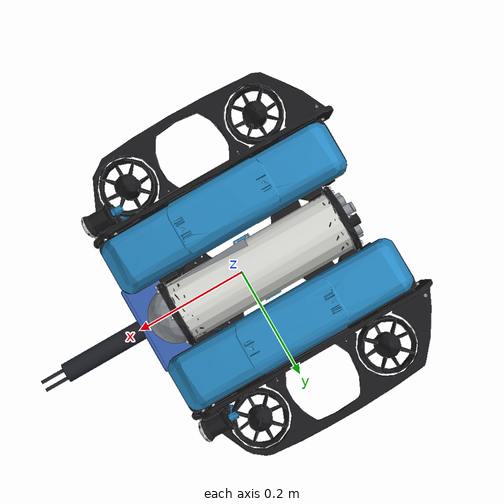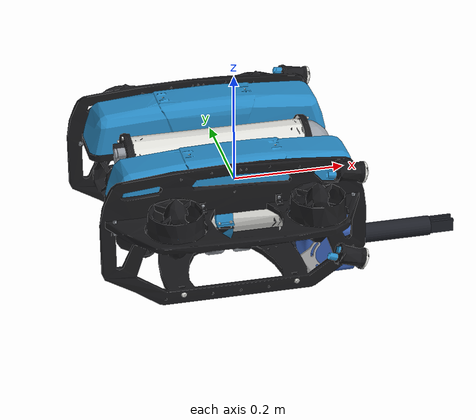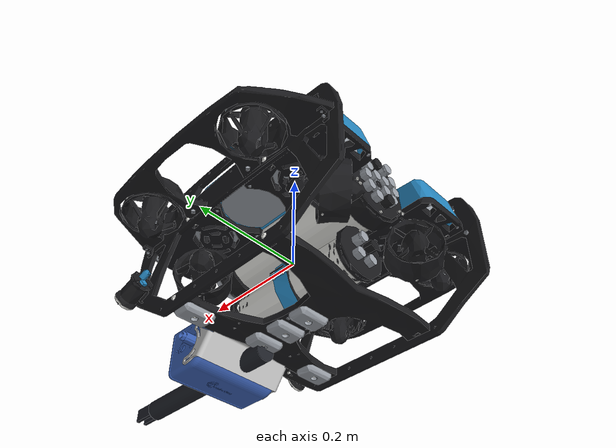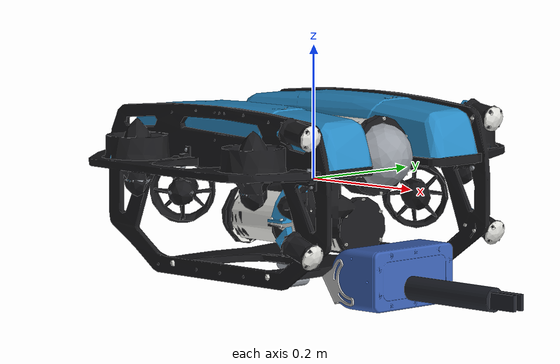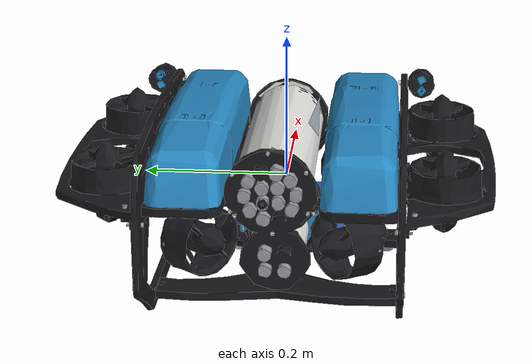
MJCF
<mujoco model="bluerov2_heavy_gripper">

  <compiler angle="radian" meshdir="meshes" autolimits="true"/>

  <!-- density=0 viscosity=0: MuJoCo's built-in fluid model is OFF on purpose;
       all hydrodynamics are injected by hydro.py. -->
  <option timestep="0.002" integrator="implicitfast" density="0" viscosity="0"/>

  <visual>
    <headlight ambient="0.6 0.6 0.62" diffuse="0.85 0.85 0.88" specular="0.25 0.25 0.25"/>
    <rgba haze="0.12 0.18 0.28 1"/>
    <scale framelength="0.25" framewidth="0.008"/>
    <global offwidth="1280" offheight="960"/>
  </visual>

  <asset>
    <mesh name="bluerov_body"     file="bluerov_body.obj"/>
    <mesh name="bluerov_thruster" file="bluerov_thruster.obj"/>
    <material name="hull"      rgba="0.33 0.37 0.44 1" specular="0.35" shininess="0.3"/>
    <material name="thruster"  rgba="0.12 0.13 0.16 1" specular="0.4" shininess="0.4"/>
    <material name="collision" rgba="0.85 0.45 0.20 0.25"/>
    <material name="c3_housing" rgba="0.231373 0.380392 0.705882 1" specular="0.35" shininess="0.4"/>
    <material name="c3_mount_gray" rgba="0.752941 0.752941 0.752941 1" specular="0.4" shininess="0.4"/>
    <mesh name="c3_camera" file="c3_camera.stl" inertia="shell"/>
    <mesh name="c3_mount" file="c3_mount.stl" inertia="shell"/>
    <mesh name="rovc_cyan"   file="rov_body_cyan.obj"/>
    <mesh name="rovc_white"  file="rov_body_white.obj"/>
    <mesh name="rovc_black"  file="rov_body_black.obj"/>
    <mesh name="rovc_silver" file="rov_body_silver.obj"/>
    <material name="rovc_cyan"   rgba="0.16 0.55 0.78 1" specular="0.3" shininess="0.35"/>
    <material name="rovc_white"  rgba="0.90 0.90 0.88 1" specular="0.3" shininess="0.35"/>
    <material name="rovc_black"  rgba="0.10 0.10 0.11 1" specular="0.3" shininess="0.35"/>
    <material name="rovc_silver" rgba="0.60 0.62 0.65 1" specular="0.4" shininess="0.4"/>
  </asset>

  <default>
    <default class="visual">
      <geom type="mesh" contype="0" conaffinity="0" group="2"/>
    </default>
    <default class="collision">
      <geom type="box" group="3" material="collision" contype="1" conaffinity="1"/>
    </default>
    <default class="thruster">
      <site type="cylinder" size="0.012 0.004" rgba="0.1 0.7 1 1" group="4"/>
    </default>
    <default class="ref">
      <site type="sphere" size="0.012" group="4"/>
    </default>
  </default>

  <worldbody>
    <light name="key"  pos="0.8 0.8 2.5"  dir="-0.3 -0.3 -1" directional="true"
           diffuse="0.55 0.55 0.6" specular="0.2 0.2 0.2"/>
    <light name="fill" pos="-0.8 -0.6 1.2" dir="0.4 0.3 -1" directional="true"
           diffuse="0.35 0.35 0.4" specular="0.1 0.1 0.1"/>
    <body name="base_link" pos="0 0 0">
      <freejoint name="free"/>
      <inertial pos="-0.00168 0.00000 0.00063" mass="13.6640" diaginertia="0.38029 0.76777 0.70076"/>

      <geom class="visual" mesh="rovc_cyan"   material="rovc_cyan" pos="-0.03489 -0.00099 0.02579"/>
      <geom class="visual" mesh="rovc_white"  material="rovc_white" pos="-0.03489 -0.00099 0.02579"/>
      <geom class="visual" mesh="rovc_black"  material="rovc_black" pos="-0.03489 -0.00099 0.02579"/>
      <geom class="visual" mesh="rovc_silver" material="rovc_silver" pos="-0.03489 -0.00099 0.02579"/>

      <!-- ===== collision proxy ===== -->
      <geom class="collision" pos="-0.03489 -0.00099 -0.02421" size="0.25 0.175 0.125"/>

      <site name="thruster_0" class="thruster" pos="0.10061 -0.10099 -0.04671" quat="0.92388 0 0 0.382684"/>
      <site name="thruster_1" class="thruster" pos="0.10061 0.09901 -0.04671" quat="0.92388 0 0 -0.382684"/>
      <site name="thruster_2" class="thruster" pos="-0.18239 -0.10099 -0.04671" quat="0.382683 0 0 0.92388"/>
      <site name="thruster_3" class="thruster" pos="-0.18239 0.09901 -0.04671" quat="-0.382683 0 0 0.92388"/>
      <site name="thruster_4" class="thruster" pos="0.08511 -0.22099 0.02079" quat="-0.707107 0 0.707107 0"/>
      <site name="thruster_5" class="thruster" pos="0.08511 0.21901 0.02079" quat="-0.707107 0 0.707107 0"/>
      <site name="thruster_6" class="thruster" pos="-0.15489 -0.22099 0.02079" quat="-0.707107 0 0.707107 0"/>
      <site name="thruster_7" class="thruster" pos="-0.15489 0.21901 0.02079" quat="-0.707107 0 0.707107 0"/>
      <!-- ===== PAYLOAD: Newton Subsea Gripper (visual body + articulated jaws) ===== -->
      <geom class="visual" type="cylinder" size="0.018 0.1515"
            pos="0.21511 -0.00099 -0.14421" zaxis="1 0 0" material="thruster"/>
      <body name="jaw_left" pos="0.38161 0.008 -0.14421">
        <inertial pos="0 0 0" mass="0.03" diaginertia="4e-06 1e-05 1e-05"/>
        <joint name="jaw_left" type="slide" axis="0 1 0" range="0 0.031"
               damping="2.0"/>
        <geom name="jaw_left" type="box" size="0.03 0.003 0.012"
              material="thruster" contype="1" conaffinity="1" group="2"/>
      </body>
      <body name="jaw_right" pos="0.38161 -0.008 -0.14421">
        <inertial pos="0 0 0" mass="0.03" diaginertia="4e-06 1e-05 1e-05"/>
        <joint name="jaw_right" type="slide" axis="0 1 0" range="-0.031 0"
               damping="2.0"/>
        <geom name="jaw_right" type="box" size="0.03 0.003 0.012"
              material="thruster" contype="1" conaffinity="1" group="2"/>
      </body>

      <geom class="visual" type="mesh" mesh="c3_mount" pos="0.10061 0.00448 -0.14028"
            material="c3_mount_gray"/>
      <geom class="visual" type="mesh" mesh="c3_camera" pos="0.16380 0.00701 -0.13004"
            material="c3_housing"/>
      <camera name="c3_center" pos="0.20460 0.00448 -0.12958"
              xyaxes="-0.00000 -1.00000 -0.00000 -0.00560 0.00000 0.99998" fovy="52.5"/>
      <camera name="c3_left" pos="0.20460 0.04198 -0.12958"
              xyaxes="-0.00000 -1.00000 -0.00000 -0.00560 0.00000 0.99998" fovy="55.5"/>
      <camera name="c3_right" pos="0.20460 -0.03302 -0.12958"
              xyaxes="-0.00000 -1.00000 -0.00000 -0.00560 0.00000 0.99998" fovy="55.5"/>

      <!-- reference site at the base_link origin -->
      <site name="base_origin" class="ref" pos="-0.03489 -0.00099 0.02579" rgba="1 0.2 0.2 1"/>
    </body>
  </worldbody>

  <!-- ===== 8 thruster force actuators (ctrl = thrust in N, T200 curve) ===== -->
  <actuator>
    <general name="thr0" site="thruster_0" gear="1 0 0 0 0 0" ctrlrange="-51.5507 64.1319"/>
    <general name="thr1" site="thruster_1" gear="1 0 0 0 0 0" ctrlrange="-51.5507 64.1319"/>
    <general name="thr2" site="thruster_2" gear="1 0 0 0 0 0" ctrlrange="-51.5507 64.1319"/>
    <general name="thr3" site="thruster_3" gear="1 0 0 0 0 0" ctrlrange="-51.5507 64.1319"/>
    <general name="thr4" site="thruster_4" gear="1 0 0 0 0 0" ctrlrange="-51.5507 64.1319"/>
    <general name="thr5" site="thruster_5" gear="1 0 0 0 0 0" ctrlrange="-51.5507 64.1319"/>
    <general name="thr6" site="thruster_6" gear="1 0 0 0 0 0" ctrlrange="-51.5507 64.1319"/>
    <general name="thr7" site="thruster_7" gear="1 0 0 0 0 0" ctrlrange="-51.5507 64.1319"/>
    <!-- gripper: ONE position actuator (ctrl index 8) drives jaw_left; the equality below mirrors jaw_right = -jaw_left. 0 = closed, 0.031 = full 62 mm opening. -->
    <position name="gripper" joint="jaw_left" kp="100" ctrlrange="0 0.031" forcerange="-30 30"/>
  </actuator>

  <equality>
    <joint joint1="jaw_right" joint2="jaw_left" polycoef="0 -1 0 0 0"/>
  </equality>
</mujoco>
